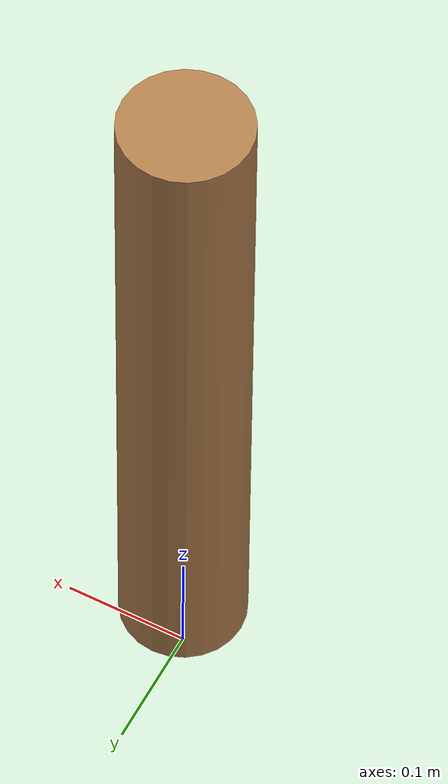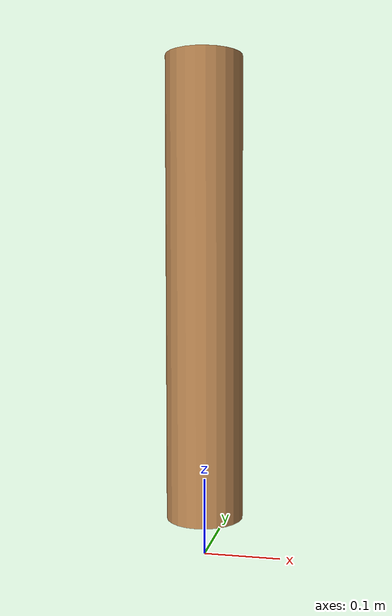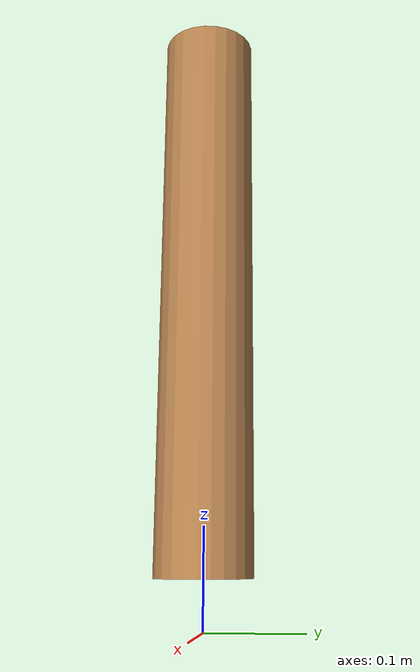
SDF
<?xml version="1.0" ?>
<sdf version="1.5">
  <model name="small_peg">
    <link name="link">
      <pose>0 0 0.35 0 0 0</pose>
      <inertial>
        <mass>0.0175</mass>
        <inertia>
          <ixx>9.749231770833334e-06</ixx>
          <ixy>0</ixy>
          <ixz>0</ixz>
          <iyy>9.749231770833334e-06</iyy>
          <iyz>0</iyz>
          <izz>8.317968750000001e-07</izz>
        </inertia>
      </inertial>

      <collision name="collision">
        <geometry>
          <cylinder>
            <radius> 0.05 </radius>
            <length> 0.6 </length>
          </cylinder>
        </geometry>
        <surface>
          <contact>
            <!-- Red Pine coefficients for longitudinal axis of the wood
                 according to:
                 http://www.fpl.fs.fed.us/documnts/fplgtr/fplgtr113/ch04.pdf -->
            <poissons_ratio>0.347</poissons_ratio>
            <elastic_modulus>8.8e+09</elastic_modulus>
            <ode>
              <kp>100000</kp>
              <kd>100</kd>
              <max_vel>100.0</max_vel>
              <min_depth>0.001</min_depth>
            </ode>
          </contact>
          <friction>
            <torsional>
              <coefficient>1.0</coefficient>
              <use_patch_radius>0</use_patch_radius>
              <surface_radius>0.01</surface_radius>
            </torsional>
          </friction>
        </surface>
      </collision>

      <visual name="visual">
        <geometry>
          <cylinder>
            <radius> 0.05 </radius>
            <length> 0.6 </length>
          </cylinder>
        </geometry>
        <material>
          <script>
            <uri>file://media/materials/scripts/gazebo.material</uri>
            <name>Gazebo/Wood</name>
          </script>
        </material>
      </visual>

    </link>
  </model>
</sdf>
